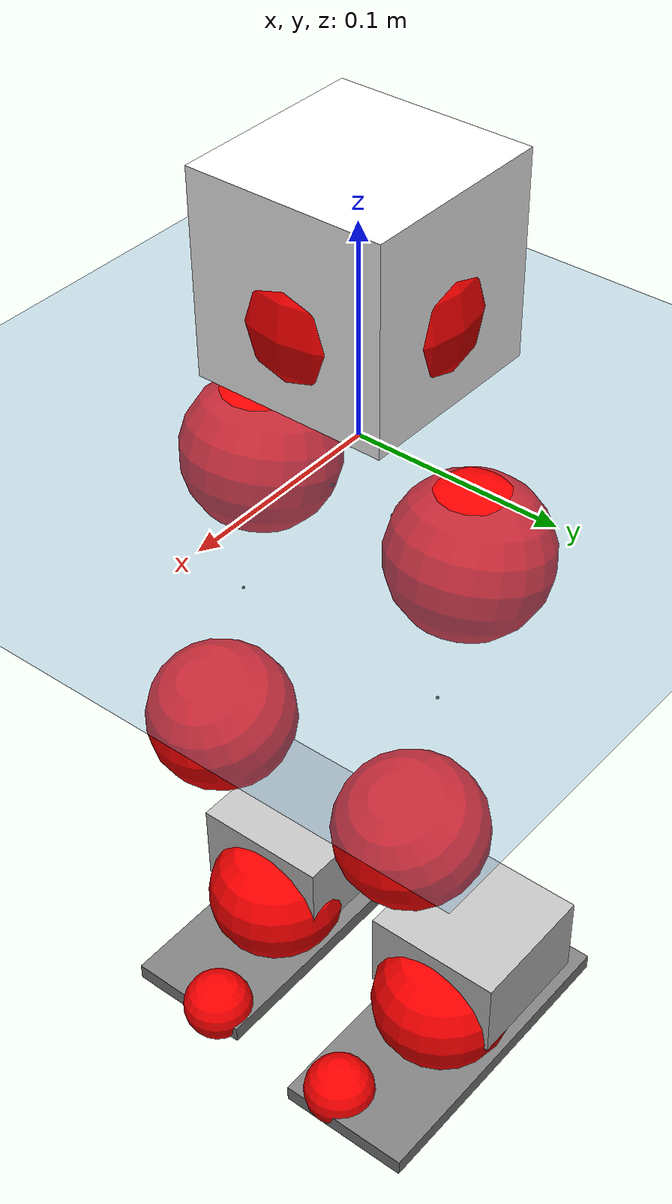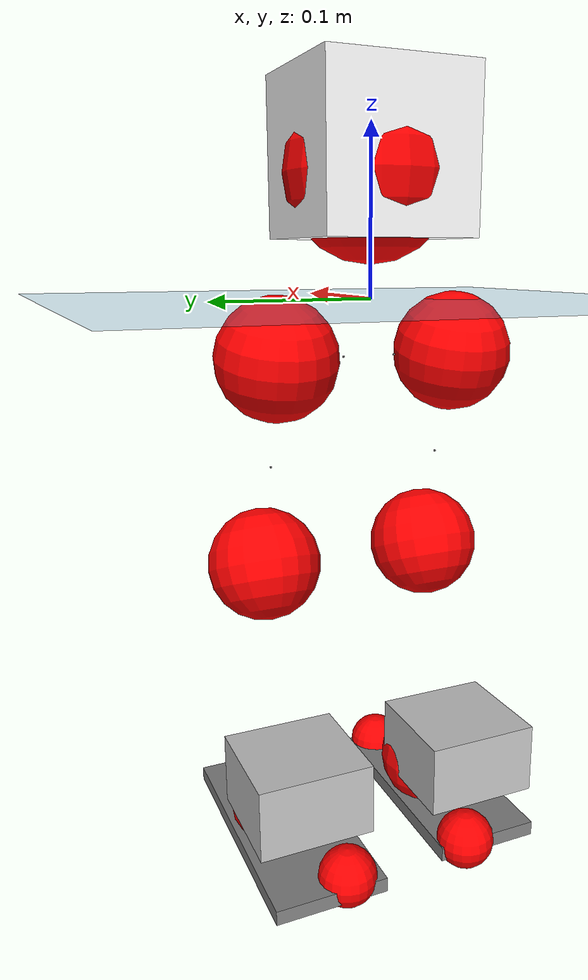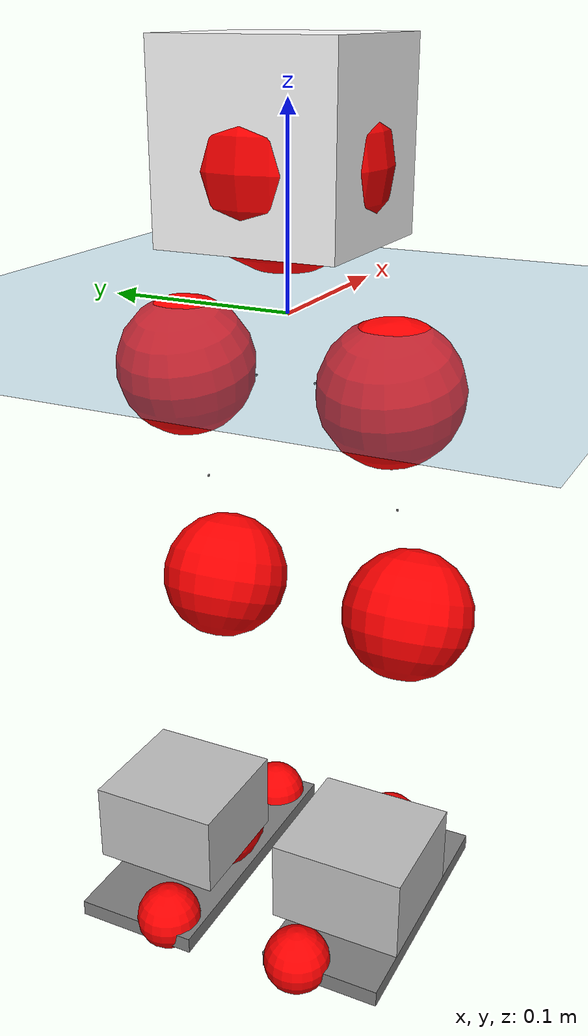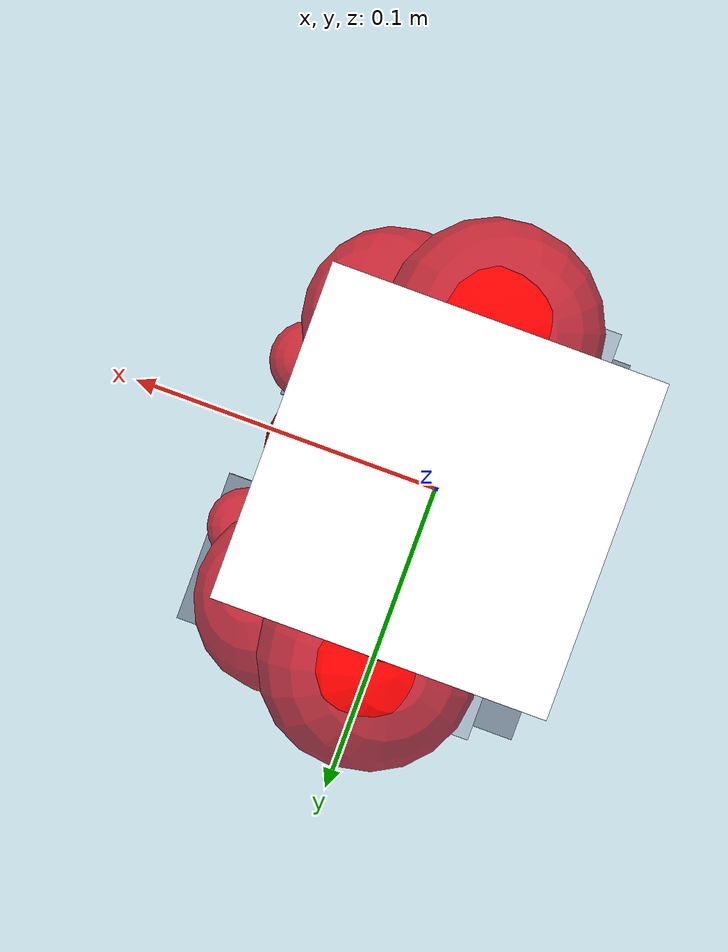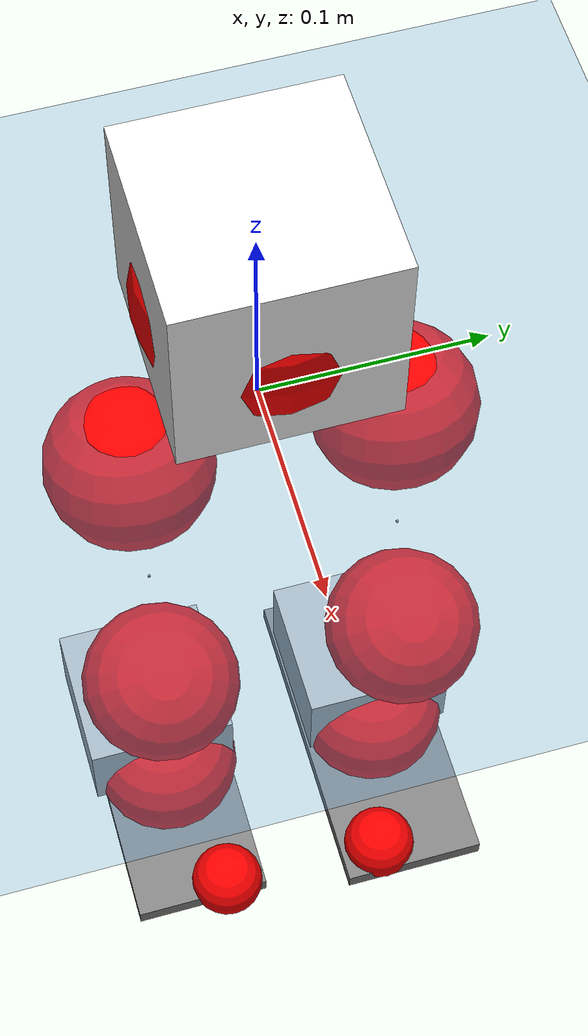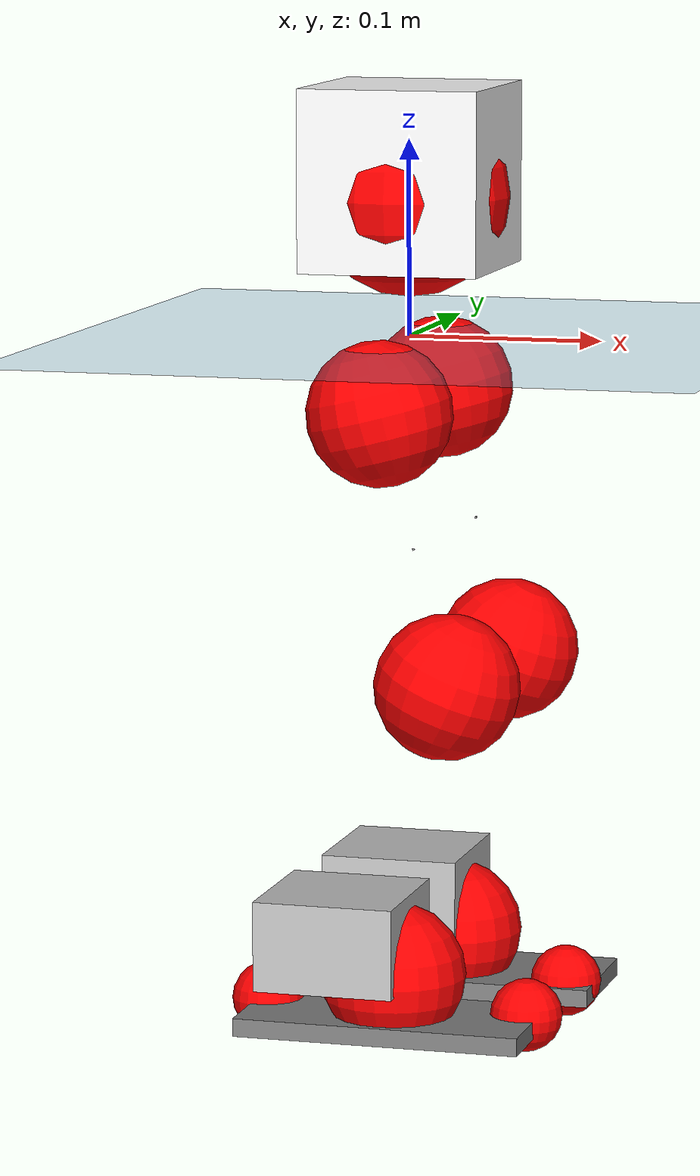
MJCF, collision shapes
<mujoco model="pi_12dof_release_v1">
  <compiler angle="radian" assetdir="assets" balanceinertia="true" inertiafromgeom="false"/>

  <option timestep="0.005" density="1.2" viscosity="2e-05"/>

  <size nkey="1"/>

  <visual>
    <quality shadowsize="8192"/>
    <map shadowclip="0.5"/>
  </visual>

  <default>
    <default class="/">
      <joint armature="0.01" damping="0.01" frictionloss="0.01"/>
      <geom contype="0" conaffinity="0" group="1" solref="-1000 -80"/>
      <site size="0.01 0.005 0.005" group="5"/>
      <general forcelimited="true" biastype="affine" gainprm="20" biasprm="0 -20 -0.5"/>
      <default class="foot">
        <geom size="0.0845 0.036 0.005" type="box" condim="6" group="4" priority="1" friction="0.9 0.2 0.2" solimp="0.015 1 0.005"/>
      </default>
      <default class="reward_collision_sphere">
        <geom group="5" rgba="1 0 0 1"/>
      </default>
    </default>
  </default>

  <asset>
    <texture type="skybox" colorspace="auto" name="//unnamed_texture_0" builtin="gradient" rgb1="0.95 0.95 0.95" rgb2="0.95 0.95 0.95" width="100" height="600"/>
    <texture type="2d" colorspace="auto" name="texplane" builtin="checker" rgb1="0.345 0.575 0.748" rgb2="0.345 0.575 0.748" markrgb="1 1 1" width="512" height="512"/>
    <material name="MatPlane" class="/" texture="texplane" texuniform="true" texrepeat="2 2" specular="0.9"/>
    <mesh name="baselink_1" class="/" file="baselink_1.STL"/>
    <mesh name="r_hip_pitch_link" class="/" file="r_hip_pitch_link.STL"/>
    <mesh name="r_hip_roll_link" class="/" file="r_hip_roll_link.STL"/>
    <mesh name="r_thigh_link" class="/" file="r_thigh_link.STL"/>
    <mesh name="r_calf_link" class="/" file="r_calf_link.STL"/>
    <mesh name="r_ankle_pitch_link" class="/" file="r_ankle_pitch_link.STL"/>
    <mesh name="r_ankle_roll_link" class="/" file="r_ankle_roll_link.STL"/>
    <mesh name="l_hip_pitch_link" class="/" file="l_hip_pitch_link.STL"/>
    <mesh name="l_hip_roll_link" class="/" file="l_hip_roll_link.STL"/>
    <mesh name="l_thigh_link" class="/" file="l_thigh_link.STL"/>
    <mesh name="l_calf_link" class="/" file="l_calf_link.STL"/>
    <mesh name="l_ankle_pitch_link" class="/" file="l_ankle_pitch_link.STL"/>
    <mesh name="l_ankle_roll_link" class="/" file="l_ankle_roll_link.STL"/>
  </asset>

  <worldbody>
    <geom name="floor" class="/" size="100 100 0.125" type="plane" group="0" material="MatPlane"/>
    <light name="toplight_shadow" class="/" pos="0 0 5" dir="0.0990148 0.0990148 -0.990148" type="directional" ambient="0.04 0.04 0.04" diffuse="0.55 0.55 0.55" specular="0.12 0.12 0.12"/>
    <light name="toplight_fill" class="/" pos="0 0 5" dir="0.0990148 0.0990148 -0.990148" type="directional" castshadow="false" ambient="0.04 0.04 0.04" diffuse="0.3 0.3 0.3" specular="0.08 0.08 0.08"/>
    <body name="trunk" pos="8.32128e-05 0.000779007 -0.000299159" quat="1 -1.17434e-06 8.81238e-07 -1.93325e-05">
      <inertial pos="0.00254527 -4.76068e-05 0.0410723" quat="0.697375 0.0107512 0.00915581 0.716567" mass="1.73862" diaginertia="0.0106625 0.00212698 0.00456824"/>
      <joint name="//unnamed_joint_0" type="free"/>
      <geom name="//unnamed_geom_1" class="/" type="mesh" density="0" rgba="1 1 1 1" mesh="baselink_1"/>
      <geom name="//unnamed_geom_2" class="/" size="0.0463745 0.0463745 0.0463745" pos="0 0 0.081472" type="box" rgba="1 1 1 1"/>
      <geom name="//unnamed_geom_3" class="reward_collision_sphere" size="0.0510119" pos="0 0 0.071288"/>
      <site name="imu" class="/" pos="-0.00411048 -0.00341672 0.00390802" size="0.0092749"/>
      <camera name="track" class="/" pos="0 -1.49654 0" quat="0.707107 0.707107 0 0" mode="trackcom"/>
      <camera name="ego_camera" class="/" pos="0.0761849 0 0.183312" quat="-0.5 -0.5 0.5 0.5"/>
      <body name="r_hip_pitch_link" pos="-0.000495531 -0.0162382 -0.0331437" quat="0.992217 0.000308374 -0.12452 0.00013525">
        <inertial pos="0.00127897 -0.0418471 -0.000818055" quat="-0.0200393 0.705277 -0.0281672 0.708089" mass="0.297374" diaginertia="0.000117356 2.32869e-05 9.13075e-05"/>
        <joint name="r_hip_pitch_joint" class="/" pos="0 0 0" axis="-1.56322e-06 -1 5.53472e-07" range="-1.7505 1.2632" armature="0.0093626" damping="0.0133036" frictionloss="0.00905587"/>
        <geom name="//unnamed_geom_4" class="/" type="mesh" density="0" rgba="0.75294 0.75294 0.75294 1" mesh="r_hip_pitch_link"/>
        <geom name="//unnamed_geom_5" class="/" size="0.000463745 0.000463745 0.000463745" type="box" rgba="0.75294 0.75294 0.75294 1"/>
        <body name="r_hip_roll_link" pos="0.000180224 -0.0406834 0.000411852" quat="1 -0.00012326 0.000390129 0.00013095">
          <inertial pos="-0.00204366 -0.000932786 -0.0627241" quat="0.704403 -0.0795692 -0.0818069 0.700566" mass="0.309669" diaginertia="0.000360002 6.51732e-05 0.000139919"/>
          <joint name="r_hip_roll_joint" class="/" pos="0 0 0" axis="-0.999995 -0.00325226 -0.000215956" range="-0.122716 0.484112" armature="0.00966242" damping="0.00278772" frictionloss="0.00935827"/>
          <geom name="//unnamed_geom_6" class="/" type="mesh" density="0" rgba="0.75294 0.75294 0.75294 1" mesh="r_hip_roll_link"/>
          <geom name="//unnamed_geom_7" class="/" size="0.000463745 0.000463745 0.000463745" type="box" rgba="0.75294 0.75294 0.75294 1"/>
          <geom name="//unnamed_geom_8" class="reward_collision_sphere" size="0.0370996"/>
          <body name="r_thigh_link" pos="3.45124e-05 0.000860854 -0.0700696" quat="1 -9.66433e-06 0.000393842 -8.72553e-05">
            <inertial pos="-0.000560854 0.000572693 -0.0487001" quat="0.737458 0.675393 7.38865e-05 -4.18245e-05" mass="0.0900069" diaginertia="0.000136307 2.21818e-05 6.32367e-05"/>
            <joint name="r_thigh_joint" class="/" pos="0 0 0" axis="-0.000779834 0.000479664 -1" range="-0.284637 0.596504" armature="0.00933123" damping="0.00265103" frictionloss="0.00925261"/>
            <geom name="//unnamed_geom_9" class="/" type="mesh" density="0" rgba="0.75294 0.75294 0.75294 1" mesh="r_thigh_link"/>
            <geom name="//unnamed_geom_10" class="/" size="0.000463745 0.000463745 0.000463745" type="box" rgba="0.75294 0.75294 0.75294 1"/>
            <body name="r_calf_link" pos="0.000402978 -0.00200207 -0.0713156" quat="0.94765 -1.32006e-05 0.319311 9.92248e-06">
              <inertial pos="-0.000218769 -0.000215819 -0.070667" quat="0.999981 -0.00341699 -7.96685e-05 0.00520662" mass="0.650392" diaginertia="0.00377502 0.000811798 0.000188807"/>
              <joint name="r_calf_joint" class="/" pos="0 0 0" axis="-0.000742425 -0.999992 0.00399283" range="-1.63889 0.63659" armature="0.00905516" damping="0.00848436" frictionloss="0.00906801"/>
              <geom name="//unnamed_geom_11" class="/" type="mesh" density="0" rgba="0.75294 0.75294 0.75294 1" mesh="r_calf_link"/>
              <geom name="//unnamed_geom_12" class="/" size="0.000463745 0.000463745 0.000463745" type="box" rgba="0.75294 0.75294 0.75294 1"/>
              <geom name="//unnamed_geom_13" class="reward_collision_sphere" size="0.0370996"/>
              <body name="r_ankle_pitch_link" pos="0.000319923 0.0010115 -0.14277" quat="0.980072 -1.53264e-05 -0.198641 0.000140355">
                <inertial pos="0.00547099 0.00228889 5.72987e-05" quat="0.00130568 0.709605 -0.00100155 0.704597" mass="0.137768" diaginertia="0.000329028 5.16002e-05 0.000130075"/>
                <joint name="r_ankle_pitch_joint" class="/" pos="0 0 0" axis="0.00153189 -0.999999 -0.000767384" range="-1.3061 0.499979" armature="0.0092573" damping="0.00482827" frictionloss="0.00919481"/>
                <geom name="//unnamed_geom_14" class="/" type="mesh" density="0" rgba="0.75294 0.75294 0.75294 1" mesh="r_ankle_pitch_link"/>
                <geom name="//unnamed_geom_15" class="/" size="0.0361721 0.0370996 0.0231872" type="box" rgba="0.75294 0.75294 0.75294 1"/>
                <body name="r_ankle_roll_link" pos="0.0772855 0.00281195 0.000639928" quat="1 0.000159667 -7.81289e-05 -8.33651e-05">
                  <inertial pos="-0.0242738 -3.68032e-05 -0.015652" quat="0.56215 0.4312 0.434813 0.55587" mass="0.41217" diaginertia="0.00122998 0.000242175 0.00031168"/>
                  <joint name="r_ankle_roll_joint" class="/" pos="0 0 0" axis="-1 -0.000157753 0.000595305" stiffness="0.000398417" range="-0.155262 0.149994" armature="0.00927116" damping="0.00719543" frictionloss="0.00950955"/>
                  <geom name="//unnamed_geom_16" class="/" type="mesh" density="0" rgba="0.75294 0.75294 0.75294 1" mesh="r_ankle_roll_link"/>
                  <geom name="//unnamed_geom_17" class="/" type="mesh" rgba="0.75294 0.75294 0.75294 1" mesh="r_ankle_roll_link"/>
                  <geom name="right_foot" class="foot" size="0.0742973 0.0340418 0.00465032" pos="-0.0518057 0 -0.0448096"/>
                  <geom name="//unnamed_geom_19" class="reward_collision_sphere" size="0.0370996" pos="-0.0507899 0 -0.020368"/>
                  <geom name="//unnamed_geom_20" class="reward_collision_sphere" size="0.0185498" pos="0.015237 0.0149654 -0.040736"/>
                  <geom name="//unnamed_geom_21" class="reward_collision_sphere" size="0.0185498" pos="-0.121896 0.0149654 -0.040736"/>
                  <site name="right_foot" class="foot" pos="-0.0518057 0 -0.0448096" size="0.0092749"/>
                </body>
              </body>
            </body>
          </body>
        </body>
      </body>
      <body name="l_hip_pitch_link" pos="3.94356e-05 0.0172788 -0.0333346" quat="0.992212 0.000117843 -0.124563 -0.000107245">
        <inertial pos="0.00100532 0.0406732 -0.000465926" quat="-0.0365976 0.705562 0.0285376 0.707127" mass="0.312328" diaginertia="0.000138846 2.46317e-05 0.000110422"/>
        <joint name="l_hip_pitch_joint" class="/" pos="0 0 0" axis="-0.000217574 1 -0.000712589" range="-1.24536 1.75375" armature="0.00935384" damping="0.00517083" frictionloss="0.00887601"/>
        <geom name="//unnamed_geom_22" class="/" type="mesh" density="0" rgba="0.75294 0.75294 0.75294 1" mesh="l_hip_pitch_link"/>
        <geom name="//unnamed_geom_23" class="/" size="0.000463745 0.000463745 0.000463745" type="box" rgba="0.75294 0.75294 0.75294 1"/>
        <body name="l_hip_roll_link" pos="0.000973192 0.0419528 -0.000271428" quat="1 -2.44967e-05 6.18684e-05 -0.000114328">
          <inertial pos="-0.00167562 0.000122193 -0.062424" quat="0.69847 -0.0720263 -0.0790106 0.707608" mass="0.312623" diaginertia="0.000358897 6.51799e-05 0.00014157"/>
          <joint name="l_hip_roll_joint" class="/" pos="0 0 0" axis="-0.999986 -0.00455286 -0.00269073" range="-0.499887 0.118809" armature="0.008947" damping="0.00567613" frictionloss="0.00934401"/>
          <geom name="//unnamed_geom_24" class="/" type="mesh" density="0" rgba="0.75294 0.75294 0.75294 1" mesh="l_hip_roll_link"/>
          <geom name="//unnamed_geom_25" class="/" size="0.000463745 0.000463745 0.000463745" type="box" rgba="0.75294 0.75294 0.75294 1"/>
          <geom name="//unnamed_geom_26" class="reward_collision_sphere" size="0.0370996"/>
          <body name="l_thigh_link" pos="0.000940441 -0.000861095 -0.0708108" quat="1 -5.68797e-05 1.19214e-06 0.0001662">
            <inertial pos="0.000265331 -0.00159986 -0.0490099" quat="0.675281 0.73756 0.000209095 -8.30873e-05" mass="0.088177" diaginertia="0.000133102 2.20109e-05 6.28013e-05"/>
            <joint name="l_thigh_joint" class="/" pos="0 0 0" axis="0.000123917 0.000642511 -1" range="-0.603332 0.299395" armature="0.00965178" damping="0.00307864" frictionloss="0.00925328"/>
            <geom name="//unnamed_geom_27" class="/" type="mesh" density="0" rgba="0.75294 0.75294 0.75294 1" mesh="l_thigh_link"/>
            <geom name="//unnamed_geom_28" class="/" size="0.000463745 0.000463745 0.000463745" type="box" rgba="0.75294 0.75294 0.75294 1"/>
            <body name="l_calf_link" pos="-9.74363e-05 0.000362984 -0.0711689" quat="0.947589 -0.00022449 0.319492 2.96523e-05">
              <inertial pos="0.000758612 0.00158673 -0.0705459" quat="0.999973 0.00276809 -0.00147563 0.00661837" mass="0.643928" diaginertia="0.00373642 0.000815253 0.00018921"/>
              <joint name="l_calf_joint" class="/" pos="0 0 0" axis="0.00447446 0.99999 0.000157394" stiffness="0.00326199" range="-0.641415 1.65108" armature="0.00950138" damping="0.00962752" frictionloss="0.00939385"/>
              <geom name="//unnamed_geom_29" class="/" type="mesh" density="0" rgba="0.75294 0.75294 0.75294 1" mesh="l_calf_link"/>
              <geom name="//unnamed_geom_30" class="/" size="0.000463745 0.000463745 0.000463745" type="box" rgba="0.75294 0.75294 0.75294 1"/>
              <geom name="//unnamed_geom_31" class="reward_collision_sphere" size="0.0370996"/>
              <body name="l_ankle_pitch_link" pos="0.000548373 6.32532e-06 -0.142791" quat="0.980069 3.99302e-05 -0.19866 -3.17569e-05">
                <inertial pos="0.00506384 -0.000268489 -0.000695801" quat="-0.00084642 0.708073 0.00274259 0.706133" mass="0.141726" diaginertia="0.000334692 5.26419e-05 0.000132495"/>
                <joint name="l_ankle_pitch_joint" class="/" pos="0 0 0" axis="-0.000663424 0.999998 -0.00178587" range="-0.49235 1.28467" armature="0.00914047" damping="0.0087799" frictionloss="0.00927542"/>
                <geom name="//unnamed_geom_32" class="/" type="mesh" density="0" rgba="0.75294 0.75294 0.75294 1" mesh="l_ankle_pitch_link"/>
                <geom name="//unnamed_geom_33" class="/" size="0.0361721 0.0370996 0.0231872" type="box" rgba="0.75294 0.75294 0.75294 1"/>
                <body name="l_ankle_roll_link" pos="0.0756229 5.90973e-05 -0.000608825" quat="1 -0.000251509 5.44053e-05 5.21992e-05">
                  <inertial pos="-0.0246342 -0.000483076 -0.0150385" quat="0.559555 0.430661 0.434553 0.559101" mass="0.414794" diaginertia="0.00122102 0.000240624 0.000311686"/>
                  <joint name="l_ankle_roll_joint" class="/" pos="0 0 0" axis="-0.999996 -0.00201587 -0.00198432" stiffness="0.00164234" range="-0.148511 0.168848" armature="0.00923413" damping="0.00715569" frictionloss="0.00951869"/>
                  <geom name="//unnamed_geom_34" class="/" type="mesh" density="0" rgba="0.75294 0.75294 0.75294 1" mesh="l_ankle_roll_link"/>
                  <geom name="//unnamed_geom_35" class="/" type="mesh" rgba="0.75294 0.75294 0.75294 1" mesh="l_ankle_roll_link"/>
                  <geom name="left_foot" class="foot" size="0.0831014 0.0358872 0.00461325" pos="-0.0518057 0 -0.0448096"/>
                  <geom name="//unnamed_geom_37" class="reward_collision_sphere" size="0.0370996" pos="-0.0507899 0 -0.020368"/>
                  <geom name="//unnamed_geom_38" class="reward_collision_sphere" size="0.0185498" pos="0.015237 -0.0149654 -0.040736"/>
                  <geom name="//unnamed_geom_39" class="reward_collision_sphere" size="0.0185498" pos="-0.121896 -0.0149654 -0.040736"/>
                  <site name="left_foot" class="foot" pos="-0.0518057 0 -0.0448096" size="0.0092749"/>
                </body>
              </body>
            </body>
          </body>
        </body>
      </body>
    </body>
  </worldbody>

  <contact>
    <pair class="/" geom1="floor" geom2="right_foot" name="//unnamed_contact_1"/>
    <pair class="/" geom1="floor" geom2="left_foot" name="//unnamed_contact_0"/>
  </contact>

  <actuator>
    <general name="r_hip_pitch_joint" class="/" joint="r_hip_pitch_joint" forcerange="-19.1539 19.1539" gainprm="18.9661" biasprm="0 -18.9661 -0.46262"/>
    <general name="r_hip_roll_joint" class="/" joint="r_hip_roll_joint" forcerange="-19.4985 19.4985" gainprm="18.9661" biasprm="0 -18.9661 -0.46262"/>
    <general name="r_thigh_joint" class="/" joint="r_thigh_joint" forcerange="-18.8774 18.8774" gainprm="18.9661" biasprm="0 -18.9661 -0.46262"/>
    <general name="r_calf_joint" class="/" joint="r_calf_joint" forcerange="-19.7362 19.7362" gainprm="18.9661" biasprm="0 -18.9661 -0.46262"/>
    <general name="r_ankle_pitch_joint" class="/" joint="r_ankle_pitch_joint" forcerange="-19.3926 19.3926" gainprm="18.9661" biasprm="0 -18.9661 -0.46262"/>
    <general name="r_ankle_roll_joint" class="/" joint="r_ankle_roll_joint" forcerange="-19.4019 19.4019" gainprm="18.9661" biasprm="0 -18.9661 -0.46262"/>
    <general name="l_hip_pitch_joint" class="/" joint="l_hip_pitch_joint" forcerange="-19.9122 19.9122" gainprm="18.9661" biasprm="0 -18.9661 -0.46262"/>
    <general name="l_hip_roll_joint" class="/" joint="l_hip_roll_joint" forcerange="-20.1174 20.1174" gainprm="18.9661" biasprm="0 -18.9661 -0.46262"/>
    <general name="l_thigh_joint" class="/" joint="l_thigh_joint" forcerange="-19.1766 19.1766" gainprm="18.9661" biasprm="0 -18.9661 -0.46262"/>
    <general name="l_calf_joint" class="/" joint="l_calf_joint" forcerange="-19.4409 19.4409" gainprm="18.9661" biasprm="0 -18.9661 -0.46262"/>
    <general name="l_ankle_pitch_joint" class="/" joint="l_ankle_pitch_joint" forcerange="-19.4221 19.4221" gainprm="18.9661" biasprm="0 -18.9661 -0.46262"/>
    <general name="l_ankle_roll_joint" class="/" joint="l_ankle_roll_joint" forcerange="-18.8514 18.8514" gainprm="18.9661" biasprm="0 -18.9661 -0.46262"/>
  </actuator>

  <sensor>
    <gyro site="imu" name="imu_angular_velocity"/>
    <velocimeter site="imu" name="imu_linear_velocity"/>
    <framelinvel objtype="site" objname="left_foot" name="left_foot_global_linear_velocity"/>
    <framelinvel objtype="site" objname="right_foot" name="right_foot_global_linear_velocity"/>
  </sensor>

  <keyframe>
    <key name="home" qpos="0 0 0.291 1 0 0 0 0.4 0 0 -0.8 0.4 0 -0.4 0 0 0.8 -0.4 0"/>
  </keyframe>
</mujoco>
